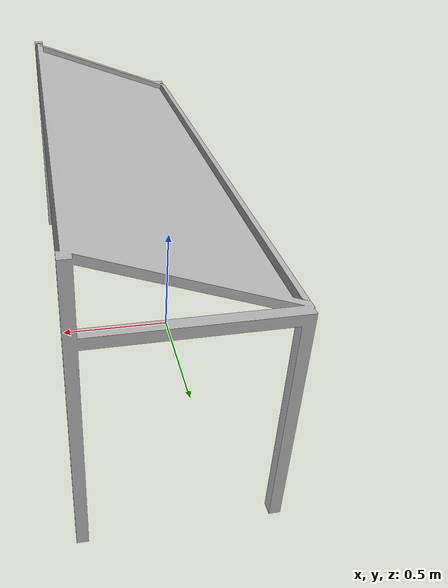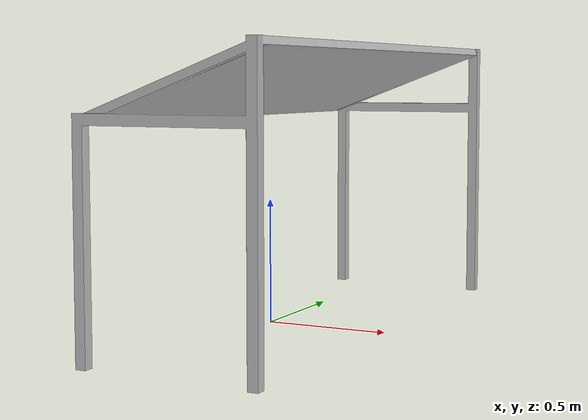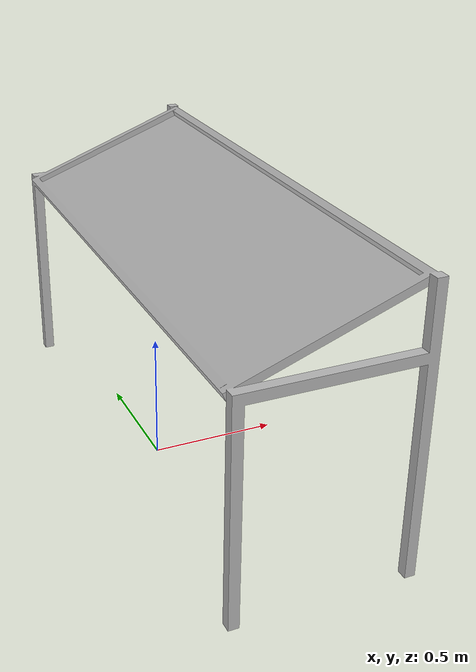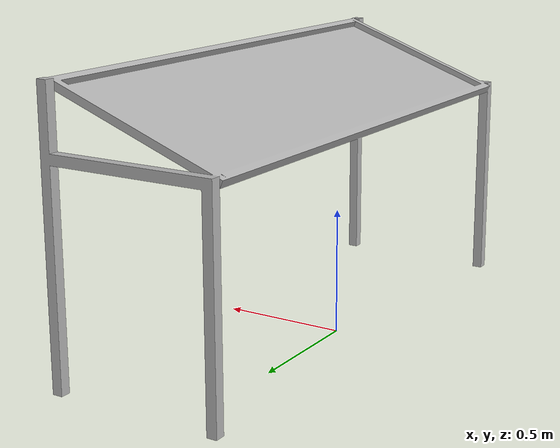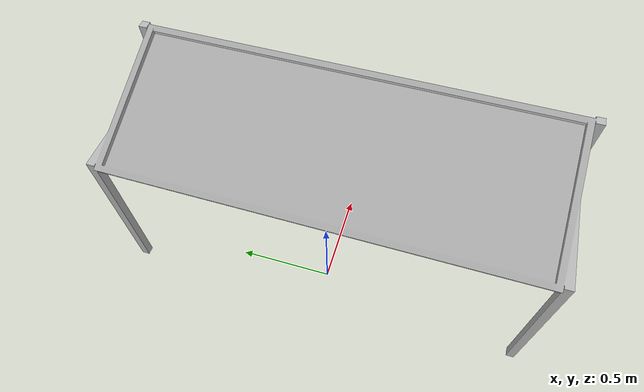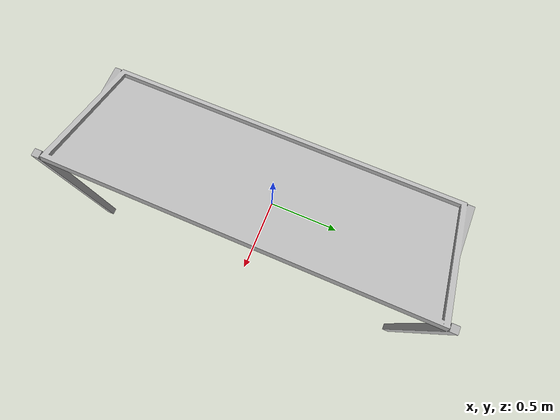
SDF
<?xml version="1.0"?>
<sdf version="1.4">

  <model name="RAAL_op50">

    <static>true</static>

    <link name="link">

      <pose>0 0 0 0 0 0</pose>

      <collision name="station_collision">
        <geometry>
          <mesh>
            <uri>model://RAAL_op60/meshes/RAAL_op60.dae</uri>
          </mesh>
        </geometry>
      </collision>

      <visual name="station_visual">
        <geometry>
          <mesh>
            <uri>model://RAAL_op60/meshes/RAAL_op60.dae</uri>
          </mesh>
        </geometry>

        <material>
          <script>
            <uri>model://RAAL_op60/materials/scripts</uri>
            <uri>model://RAAL_op60/materials/textures</uri>
          </script>
        </material>
      </visual>

    </link>

  </model>
</sdf>
